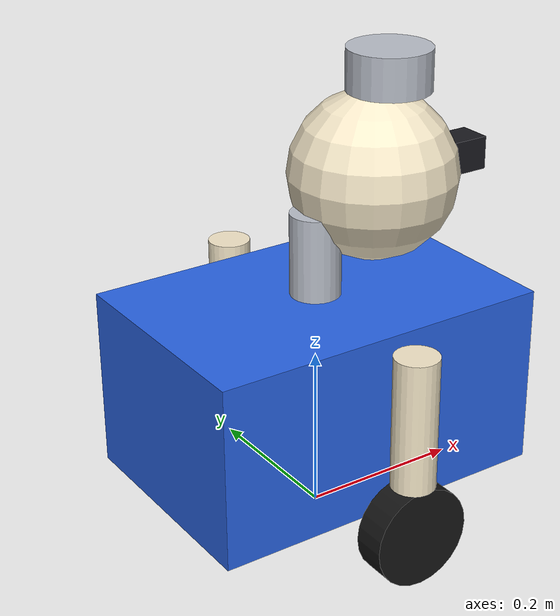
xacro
<?xml version="1.0"?>
<robot name="zaoer_bot" xmlns:xacro="http://www.ros.org/wiki/xacro">
  <xacro:include filename="$(find zaoer_bot_description)/urdf/common_macros.xacro"/>

  <xacro:property name="base_length" value="0.42"/>
  <xacro:property name="base_width" value="0.28"/>
  <xacro:property name="base_height" value="0.22"/>
  <xacro:property name="base_mass" value="8.5"/>

  <xacro:property name="wheel_radius" value="0.06"/>
  <xacro:property name="wheel_width" value="0.04"/>
  <xacro:property name="wheel_mass" value="0.45"/>
  <xacro:property name="wheel_y" value="0.19"/>

  <xacro:property name="caster_radius" value="0.035"/>
  <xacro:property name="base_z" value="${wheel_radius + base_height / 2.0}"/>
  <xacro:property name="wheel_z" value="${wheel_radius - base_z}"/>
  <xacro:property name="caster_z" value="${caster_radius - base_z}"/>

  <link name="base_footprint"/>

  <joint name="base_footprint_joint" type="fixed">
    <origin xyz="0 0 ${base_z}" rpy="0 0 0"/>
    <parent link="base_footprint"/>
    <child link="base_link"/>
  </joint>

  <link name="base_link">
    <visual>
      <origin xyz="0 0 0" rpy="0 0 0"/>
      <geometry>
        <box size="${base_length} ${base_width} ${base_height}"/>
      </geometry>
      <material name="body_blue"/>
    </visual>

    <visual>
      <origin xyz="0.00 0 0.16" rpy="0 0 0"/>
      <geometry>
        <cylinder radius="0.03" length="0.10"/>
      </geometry>
      <material name="sensor_gray"/>
    </visual>

    <visual>
      <origin xyz="0.08 0 0.24" rpy="0 0 0"/>
      <geometry>
        <sphere radius="0.10"/>
      </geometry>
      <material name="head_cream"/>
    </visual>

    <visual>
      <origin xyz="0.18 0 0.02" rpy="0 0 0"/>
      <geometry>
        <box size="0.03 0.12 0.09"/>
      </geometry>
      <material name="trim_orange"/>
    </visual>

    <visual>
      <origin xyz="-0.16 0 0.00" rpy="0 0 0"/>
      <geometry>
        <box size="0.09 0.18 0.12"/>
      </geometry>
      <material name="trim_green"/>
    </visual>

    <visual>
      <origin xyz="0.00 0.19 0.03" rpy="0 0 ${pi / 2.0}"/>
      <geometry>
        <cylinder radius="0.026" length="0.16"/>
      </geometry>
      <material name="head_cream"/>
    </visual>

    <visual>
      <origin xyz="0.00 -0.19 0.03" rpy="0 0 ${pi / 2.0}"/>
      <geometry>
        <cylinder radius="0.026" length="0.16"/>
      </geometry>
      <material name="head_cream"/>
    </visual>

    <collision>
      <origin xyz="0 0 0" rpy="0 0 0"/>
      <geometry>
        <box size="${base_length} ${base_width} ${base_height}"/>
      </geometry>
    </collision>

    <xacro:box_inertia mass="${base_mass}" x="${base_length}" y="${base_width}" z="${base_height}"/>
  </link>

  <xacro:wheel name="left_wheel" x="0.00" y="${wheel_y}" z="${wheel_z}" radius="${wheel_radius}" length="${wheel_width}" mass="${wheel_mass}"/>
  <xacro:wheel name="right_wheel" x="0.00" y="${-wheel_y}" z="${wheel_z}" radius="${wheel_radius}" length="${wheel_width}" mass="${wheel_mass}"/>
  <xacro:caster_ball name="rear_caster" x="-0.15" y="0.0" z="${caster_z}" radius="${caster_radius}" mass="0.15"/>

  <joint name="camera_joint" type="fixed">
    <origin xyz="0.19 0 0.24" rpy="0 0 0"/>
    <parent link="base_link"/>
    <child link="camera_link"/>
  </joint>

  <link name="camera_link">
    <visual>
      <geometry>
        <box size="0.08 0.04 0.04"/>
      </geometry>
      <material name="sensor_black"/>
    </visual>
    <collision>
      <geometry>
        <box size="0.08 0.04 0.04"/>
      </geometry>
    </collision>
    <xacro:box_inertia mass="0.15" x="0.08" y="0.04" z="0.04"/>
  </link>

  <joint name="camera_optical_joint" type="fixed">
    <origin xyz="0 0 0" rpy="${-pi / 2.0} 0 ${-pi / 2.0}"/>
    <parent link="camera_link"/>
    <child link="camera_optical_frame"/>
  </joint>

  <link name="camera_optical_frame"/>

  <joint name="lidar_joint" type="fixed">
    <origin xyz="0.10 0 0.36" rpy="0 0 0"/>
    <parent link="base_link"/>
    <child link="lidar_link"/>
  </joint>

  <link name="lidar_link">
    <visual>
      <geometry>
        <cylinder radius="0.05" length="0.05"/>
      </geometry>
      <material name="sensor_gray"/>
    </visual>
    <collision>
      <geometry>
        <cylinder radius="0.05" length="0.05"/>
      </geometry>
    </collision>
    <xacro:cylinder_inertia mass="0.20" radius="0.05" length="0.05"/>
  </link>

  <gazebo reference="base_link">
    <material>Gazebo/Blue</material>
  </gazebo>

  <gazebo reference="camera_link">
    <material>Gazebo/Black</material>
    <sensor type="camera" name="front_camera_sensor">
      <always_on>true</always_on>
      <update_rate>20.0</update_rate>
      <visualize>true</visualize>
      <camera name="front_camera">
        <horizontal_fov>1.047</horizontal_fov>
        <image>
          <width>640</width>
          <height>480</height>
          <format>R8G8B8</format>
        </image>
        <clip>
          <near>0.05</near>
          <far>12.0</far>
        </clip>
      </camera>
      <plugin name="zaoer_camera_controller" filename="libgazebo_ros_camera.so">
        <alwaysOn>true</alwaysOn>
        <updateRate>0.0</updateRate>
        <cameraName>camera</cameraName>
        <imageTopicName>image_raw</imageTopicName>
        <cameraInfoTopicName>camera_info</cameraInfoTopicName>
        <frameName>camera_optical_frame</frameName>
      </plugin>
    </sensor>
  </gazebo>

  <gazebo reference="lidar_link">
    <material>Gazebo/Gray</material>
    <sensor type="ray" name="lidar_sensor">
      <pose>0 0 0 0 0 0</pose>
      <visualize>true</visualize>
      <update_rate>15.0</update_rate>
      <ray>
        <scan>
          <horizontal>
            <samples>720</samples>
            <resolution>1</resolution>
            <min_angle>-1.5708</min_angle>
            <max_angle>1.5708</max_angle>
          </horizontal>
        </scan>
        <range>
          <min>0.12</min>
          <max>8.0</max>
          <resolution>0.01</resolution>
        </range>
        <noise>
          <type>gaussian</type>
          <mean>0.0</mean>
          <stddev>0.005</stddev>
        </noise>
      </ray>
      <plugin name="zaoer_lidar_controller" filename="libgazebo_ros_laser.so">
        <topicName>scan</topicName>
        <frameName>lidar_link</frameName>
      </plugin>
    </sensor>
  </gazebo>

  <gazebo>
    <plugin name="zaoer_diff_drive" filename="libgazebo_ros_diff_drive.so">
      <alwaysOn>true</alwaysOn>
      <updateRate>50.0</updateRate>
      <leftJoint>left_wheel_joint</leftJoint>
      <rightJoint>right_wheel_joint</rightJoint>
      <wheelSeparation>${2.0 * wheel_y}</wheelSeparation>
      <wheelDiameter>${2.0 * wheel_radius}</wheelDiameter>
      <commandTopic>cmd_vel</commandTopic>
      <odometryTopic>odom</odometryTopic>
      <odometryFrame>odom</odometryFrame>
      <robotBaseFrame>base_footprint</robotBaseFrame>
      <publishWheelTF>false</publishWheelTF>
      <publishWheelJointState>true</publishWheelJointState>
      <publishTf>true</publishTf>
      <wheelTorque>20</wheelTorque>
      <wheelAcceleration>1.5</wheelAcceleration>
      <legacyMode>false</legacyMode>
    </plugin>
  </gazebo>
</robot>

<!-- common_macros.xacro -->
<robot xmlns:xacro="http://www.ros.org/wiki/xacro">
  <material name="body_blue">
    <color rgba="0.16 0.39 0.89 1.0"/>
  </material>
  <material name="head_cream">
    <color rgba="0.95 0.90 0.78 1.0"/>
  </material>
  <material name="trim_orange">
    <color rgba="0.96 0.54 0.18 1.0"/>
  </material>
  <material name="trim_green">
    <color rgba="0.18 0.68 0.43 1.0"/>
  </material>
  <material name="sensor_black">
    <color rgba="0.10 0.10 0.12 1.0"/>
  </material>
  <material name="sensor_gray">
    <color rgba="0.72 0.74 0.78 1.0"/>
  </material>
  <material name="wheel_black">
    <color rgba="0.08 0.08 0.08 1.0"/>
  </material>

  <xacro:macro name="box_inertia" params="mass x y z">
    <inertial>
      <origin xyz="0 0 0" rpy="0 0 0"/>
      <mass value="${mass}"/>
      <inertia
        ixx="${mass * (y * y + z * z) / 12.0}"
        ixy="0.0"
        ixz="0.0"
        iyy="${mass * (x * x + z * z) / 12.0}"
        iyz="0.0"
        izz="${mass * (x * x + y * y) / 12.0}"/>
    </inertial>
  </xacro:macro>

  <xacro:macro name="cylinder_inertia" params="mass radius length">
    <inertial>
      <origin xyz="0 0 0" rpy="0 0 0"/>
      <mass value="${mass}"/>
      <inertia
        ixx="${mass * (3.0 * radius * radius + length * length) / 12.0}"
        ixy="0.0"
        ixz="0.0"
        iyy="${mass * (3.0 * radius * radius + length * length) / 12.0}"
        iyz="0.0"
        izz="${0.5 * mass * radius * radius}"/>
    </inertial>
  </xacro:macro>

  <xacro:macro name="sphere_inertia" params="mass radius">
    <inertial>
      <origin xyz="0 0 0" rpy="0 0 0"/>
      <mass value="${mass}"/>
      <inertia
        ixx="${0.4 * mass * radius * radius}"
        ixy="0.0"
        ixz="0.0"
        iyy="${0.4 * mass * radius * radius}"
        iyz="0.0"
        izz="${0.4 * mass * radius * radius}"/>
    </inertial>
  </xacro:macro>

  <xacro:macro name="wheel" params="name x y z radius length mass">
    <joint name="${name}_joint" type="continuous">
      <origin xyz="${x} ${y} ${z}" rpy="0 0 0"/>
      <parent link="base_link"/>
      <child link="${name}_link"/>
      <axis xyz="0 1 0"/>
    </joint>

    <link name="${name}_link">
      <visual>
        <origin xyz="0 0 0" rpy="${pi / 2.0} 0 0"/>
        <geometry>
          <cylinder radius="${radius}" length="${length}"/>
        </geometry>
        <material name="wheel_black"/>
      </visual>
      <collision>
        <origin xyz="0 0 0" rpy="${pi / 2.0} 0 0"/>
        <geometry>
          <cylinder radius="${radius}" length="${length}"/>
        </geometry>
      </collision>
      <xacro:cylinder_inertia mass="${mass}" radius="${radius}" length="${length}"/>
    </link>
  </xacro:macro>

  <xacro:macro name="caster_ball" params="name x y z radius mass">
    <joint name="${name}_joint" type="fixed">
      <origin xyz="${x} ${y} ${z}" rpy="0 0 0"/>
      <parent link="base_link"/>
      <child link="${name}_link"/>
    </joint>

    <link name="${name}_link">
      <visual>
        <geometry>
          <sphere radius="${radius}"/>
        </geometry>
        <material name="trim_orange"/>
      </visual>
      <collision>
        <geometry>
          <sphere radius="${radius}"/>
        </geometry>
      </collision>
      <xacro:sphere_inertia mass="${mass}" radius="${radius}"/>
    </link>
  </xacro:macro>
</robot>
